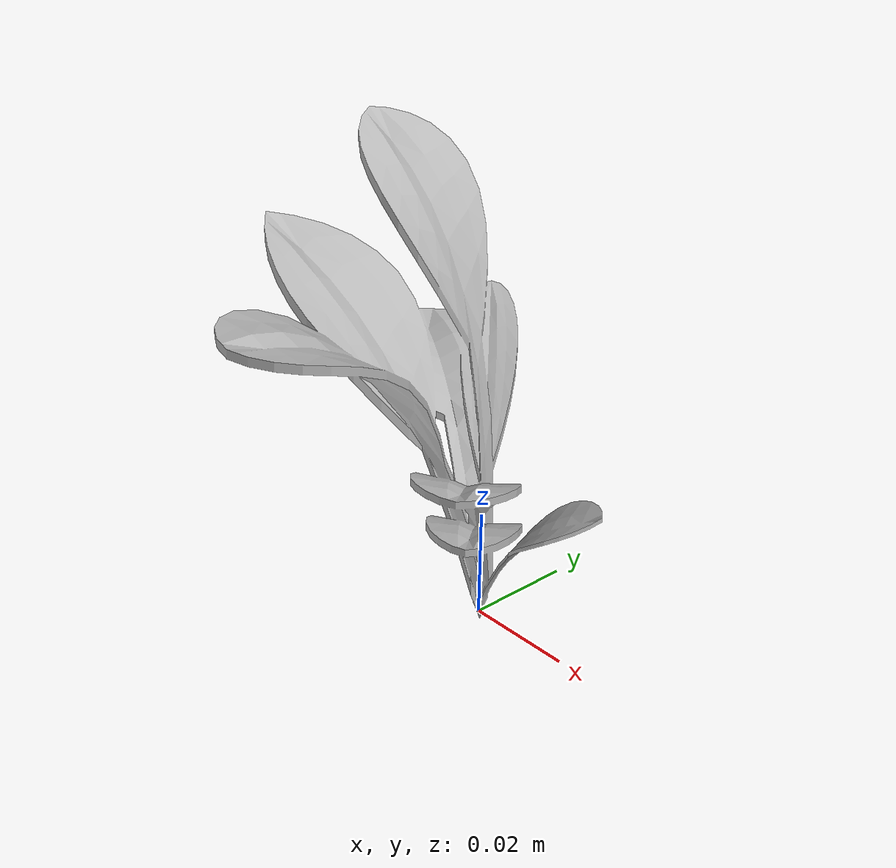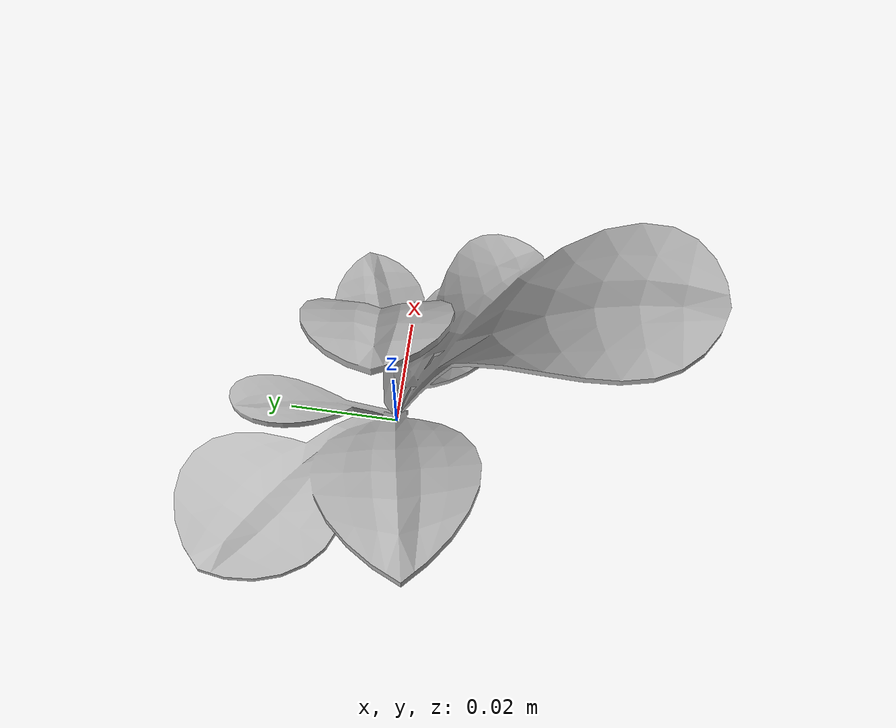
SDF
<sdf version="1.6">
  <model name="sugar_beet_8">
    <static>true</static>
    <link name="body">
      <visual name="visual">
        <geometry>
          <mesh>
            <uri>file:///sugar_beet_8/media/sugar_beet.dae</uri>
          </mesh>
        </geometry>
      </visual>
    </link>
  </model>
</sdf>
